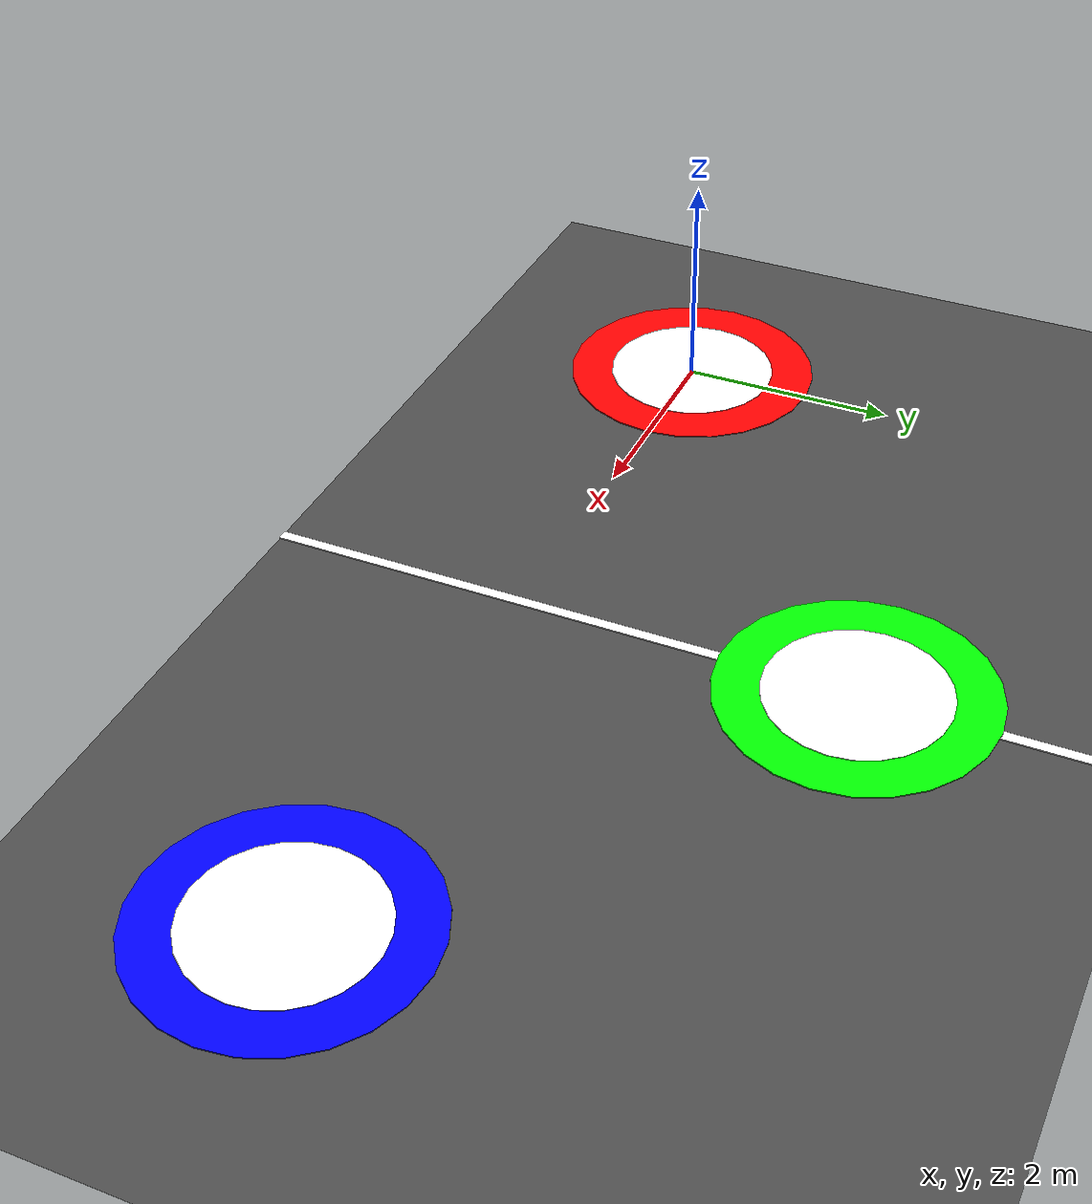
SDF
<?xml version="1.0" ?>
<sdf version="1.5">
  <world name="multi_lz_classic">

    <!-- Physics -->
    <physics name='default_physics' default='0' type='ode'>
      <gravity>0 0 -9.8066</gravity>
      <ode>
        <solver>
          <type>quick</type>
          <iters>10</iters>
          <sor>1.3</sor>
          <use_dynamic_moi_rescaling>0</use_dynamic_moi_rescaling>
        </solver>
        <constraints>
          <cfm>0</cfm>
          <erp>0.2</erp>
          <contact_max_correcting_vel>100</contact_max_correcting_vel>
          <contact_surface_layer>0.001</contact_surface_layer>
        </constraints>
      </ode>
      <max_step_size>0.004</max_step_size>
      <real_time_factor>1</real_time_factor>
      <real_time_update_rate>250</real_time_update_rate>
      <magnetic_field>6.0e-6 2.3e-5 -4.2e-5</magnetic_field>
    </physics>

    <!-- Lighting -->
    <include>
      <uri>model://sun</uri>
    </include>

    <!-- Tournament Arena Ground -->
    <model name="tournament_ground">
      <static>true</static>
      <link name="link">
        <collision name="collision">
          <geometry>
            <plane>
              <normal>0 0 1</normal>
              <size>100 100</size>
            </plane>
          </geometry>
          <surface>
            <friction>
              <ode>
                <mu>100</mu>
                <mu2>50</mu2>
              </ode>
            </friction>
          </surface>
        </collision>
        <visual name="visual">
          <cast_shadows>false</cast_shadows>
          <geometry>
            <plane>
              <normal>0 0 1</normal>
              <size>100 100</size>
            </plane>
          </geometry>
          <material>
            <script>
              <uri>file://media/materials/scripts/gazebo.material</uri>
              <name>Gazebo/Road</name>
            </script>
          </material>
        </visual>
      </link>
    </model>

    <!-- Center marker line -->
    <model name="center_line">
      <pose>4 0 0.005 0 0 0</pose>
      <static>true</static>
      <link name="link">
        <visual name="visual">
          <geometry>
            <box>
              <size>0.1 90 0.01</size>
            </box>
          </geometry>
          <material>
            <ambient>1 1 1 1</ambient>
            <diffuse>1 1 1 1</diffuse>
          </material>
        </visual>
      </link>
    </model>

    <!-- Landing Zone 0: Drone 0 at (0, 0) - RED -->
    <model name="lz_drone_0">
      <pose>0 0 0.02 0 0 0</pose>
      <static>true</static>
      <link name="link">
        <!-- Outer circle -->
        <visual name="outer_circle">
          <geometry>
            <cylinder>
              <radius>1.2</radius>
              <length>0.01</length>
            </cylinder>
          </geometry>
          <material>
            <ambient>1 0 0 1</ambient>
            <diffuse>1 0 0 1</diffuse>
            <specular>0.1 0.1 0.1 1</specular>
          </material>
        </visual>
        <!-- Inner white circle for H -->
        <visual name="inner_circle">
          <pose>0 0 0.005 0 0 0</pose>
          <geometry>
            <cylinder>
              <radius>0.8</radius>
              <length>0.01</length>
            </cylinder>
          </geometry>
          <material>
            <ambient>1 1 1 1</ambient>
            <diffuse>1 1 1 1</diffuse>
          </material>
        </visual>
        <!-- Collision -->
        <collision name="collision">
          <geometry>
            <cylinder>
              <radius>1.2</radius>
              <length>0.01</length>
            </cylinder>
          </geometry>
        </collision>
      </link>
    </model>

    <!-- Landing Zone 1: Drone 1 at (4, 3) - GREEN -->
    <model name="lz_drone_1">
      <pose>4 3 0.02 0 0 0</pose>
      <static>true</static>
      <link name="link">
        <!-- Outer circle -->
        <visual name="outer_circle">
          <geometry>
            <cylinder>
              <radius>1.2</radius>
              <length>0.01</length>
            </cylinder>
          </geometry>
          <material>
            <ambient>0 1 0 1</ambient>
            <diffuse>0 1 0 1</diffuse>
            <specular>0.1 0.1 0.1 1</specular>
          </material>
        </visual>
        <!-- Inner white circle for H -->
        <visual name="inner_circle">
          <pose>0 0 0.005 0 0 0</pose>
          <geometry>
            <cylinder>
              <radius>0.8</radius>
              <length>0.01</length>
            </cylinder>
          </geometry>
          <material>
            <ambient>1 1 1 1</ambient>
            <diffuse>1 1 1 1</diffuse>
          </material>
        </visual>
        <!-- Collision -->
        <collision name="collision">
          <geometry>
            <cylinder>
              <radius>1.2</radius>
              <length>0.01</length>
            </cylinder>
          </geometry>
        </collision>
      </link>
    </model>

    <!-- Landing Zone 2: Drone 2 at (8, 0) - BLUE -->
    <model name="lz_drone_2">
      <pose>8 0 0.02 0 0 0</pose>
      <static>true</static>
      <link name="link">
        <!-- Outer circle -->
        <visual name="outer_circle">
          <geometry>
            <cylinder>
              <radius>1.2</radius>
              <length>0.01</length>
            </cylinder>
          </geometry>
          <material>
            <ambient>0 0 1 1</ambient>
            <diffuse>0 0 1 1</diffuse>
            <specular>0.1 0.1 0.1 1</specular>
          </material>
        </visual>
        <!-- Inner white circle for H -->
        <visual name="inner_circle">
          <pose>0 0 0.005 0 0 0</pose>
          <geometry>
            <cylinder>
              <radius>0.8</radius>
              <length>0.01</length>
            </cylinder>
          </geometry>
          <material>
            <ambient>1 1 1 1</ambient>
            <diffuse>1 1 1 1</diffuse>
          </material>
        </visual>
        <!-- Collision -->
        <collision name="collision">
          <geometry>
            <cylinder>
              <radius>1.2</radius>
              <length>0.01</length>
            </cylinder>
          </geometry>
        </collision>
      </link>
    </model>

    <!-- Scene -->
    <scene>
      <ambient>0.4 0.4 0.4 1</ambient>
      <background>0.7 0.7 0.7 1</background>
      <shadows>true</shadows>
    </scene>

    <gui fullscreen='0'>
      <camera name='user_camera'>
        <pose>-5 -5 15 0 0.5 0.5</pose>
        <view_controller>orbit</view_controller>
      </camera>
    </gui>

  </world>
</sdf>
